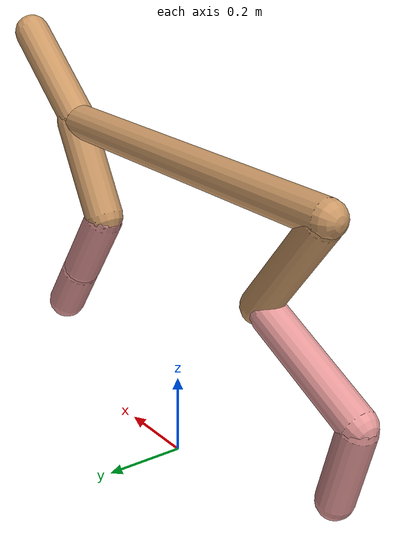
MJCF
<mujoco model="cheetah">
  <compiler angle="radian" coordinate="local" inertiafromgeom="true" settotalmass="14" />
  <default>
    <joint armature=".1" damping=".01" limited="true" solimplimit="0 .8 .03" solreflimit=".02 1" stiffness="8" />
    <geom conaffinity="0" condim="3" contype="1" friction="0.8 .1 .1" rgba="0.8 0.6 .4 1" solimp="0.0 0.8 0.01" solref="0.02 1" />
    <motor ctrllimited="true" ctrlrange="-1 1" />
  </default>
  <size nstack="300000" nuser_geom="1" />
  <option gravity="0 0 -9.81" timestep="0.01" />
  <worldbody>
    <body name="torso" pos="0.0 0.0 0.760770000456752">
      <joint armature="0" axis="1 0 0" damping="0" limited="false" name="ignorex" pos="0 0 0" stiffness="0" type="slide" />
      <joint armature="0" axis="0 0 1" damping="0" limited="false" name="ignorez" pos="0 0 0" stiffness="0" type="slide" />
      <joint armature="0" axis="0 1 0" damping="0" limited="false" name="ignorey" pos="0 0 0" stiffness="0" type="hinge" />
      <geom fromto="-0.5 0.0 0.0 0.46469212750306244 0.0 0.0" name="torso" size="0.044201061516933586" type="capsule" />
      <geom axisangle="0 1 0 .87" name="head" pos="0.5646921275030624 0.0 0.1" size="0.04629062553857466 0.15" type="capsule" />

      <body name="bthigh" pos="-.5 0 0">
        <joint axis="0 1 0" damping="6" name="bthigh" pos="0 0 0" range="-.52 1.05" stiffness="240" type="hinge" />
        <geom axisangle="0 1 0 -3.8" name="bthigh" pos="0.1045530151408659 0.0 -0.13591891968312567" size="0.04361838122089639 0.1524675000561263" type="capsule" />
        <body name="bshin" pos="0.1691060302817318 0.0 -0.2618378393662513">
          <joint axis="0 1 0" damping="4.5" name="bshin" pos="0 0 0" range="-.785 .785" stiffness="180" type="hinge" />
          <geom axisangle="0 1 0 -2.03" name="bshin" pos="-0.14690945010240633 0.0 -0.07345472505120317" rgba="0.9 0.6 0.6 1" size="0.04361838122089639 0.1577250000580617" type="capsule" />
          <body name="bfoot" pos="-0.29381890020481266 0.0 -0.14690945010240633">
            <joint axis="0 1 0" damping="3" name="bfoot" pos="0 0 0" range="-.4 .785" stiffness="120" type="hinge" />
            <geom axisangle="0 1 0 -.27" name="bfoot" pos="0.031430368939416496 0.0 -0.10162485957078" rgba="0.9 0.6 0.6 1" size="0.04361838122089639 0.09884100003638534" type="capsule" />
            <inertial mass="10" />
          </body>
        </body>
      </body>
      <body name="fthigh" pos="0.46469212750306244 0.0 0.0">
        <joint axis="0 1 0" damping="4.5" name="fthigh" pos="0 0 0" range="-1.5 0.8" stiffness="180" type="hinge" />
        <geom axisangle="0 1 0 .52" name="fthigh" pos="-0.06876723597146578 0.0 -0.11788669023679846" size="0.04992111189342007 0.13055341354019712" type="capsule" />
        <body name="fshin" pos="-0.13753447194293156 0.0 -0.23577338047359692">
          <joint axis="0 1 0" damping="3" name="fshin" pos="0 0 0" range="-1.2 1.1" stiffness="120" type="hinge" />
          <geom axisangle="0 1 0 -.6" name="fshin" pos="0.06385834552100693 0.0 -0.08841924764447112" rgba="0.9 0.6 0.6 1" size="0.04992111189342007 0.10405008898692401" type="capsule" />
          <body name="ffoot" pos="0.12771669104201386 0.0 -0.17683849528894224">
            <joint axis="0 1 0" damping="1.5" name="ffoot" pos="0 0 0" range="-3.1 -0.3" stiffness="60" type="hinge" />
            <geom axisangle="0 1 0 -.6" name="ffoot" pos="0.04430367884160882 0.0 -0.06891683375361374" rgba="0.9 0.6 0.6 1" size="0.04992111189342007 0.06871232291589321" type="capsule" />
            <inertial mass="10" />
          </body>
        </body>
      </body>
    </body>
  </worldbody>
  <actuator>
    <motor gear="120" joint="bthigh" name="bthigh" />
    <motor gear="90" joint="bshin" name="bshin" />
    <motor gear="60" joint="bfoot" name="bfoot" />
    <motor gear="120" joint="fthigh" name="fthigh" />
    <motor gear="60" joint="fshin" name="fshin" />
    <motor gear="30" joint="ffoot" name="ffoot" />
  </actuator>
</mujoco>
